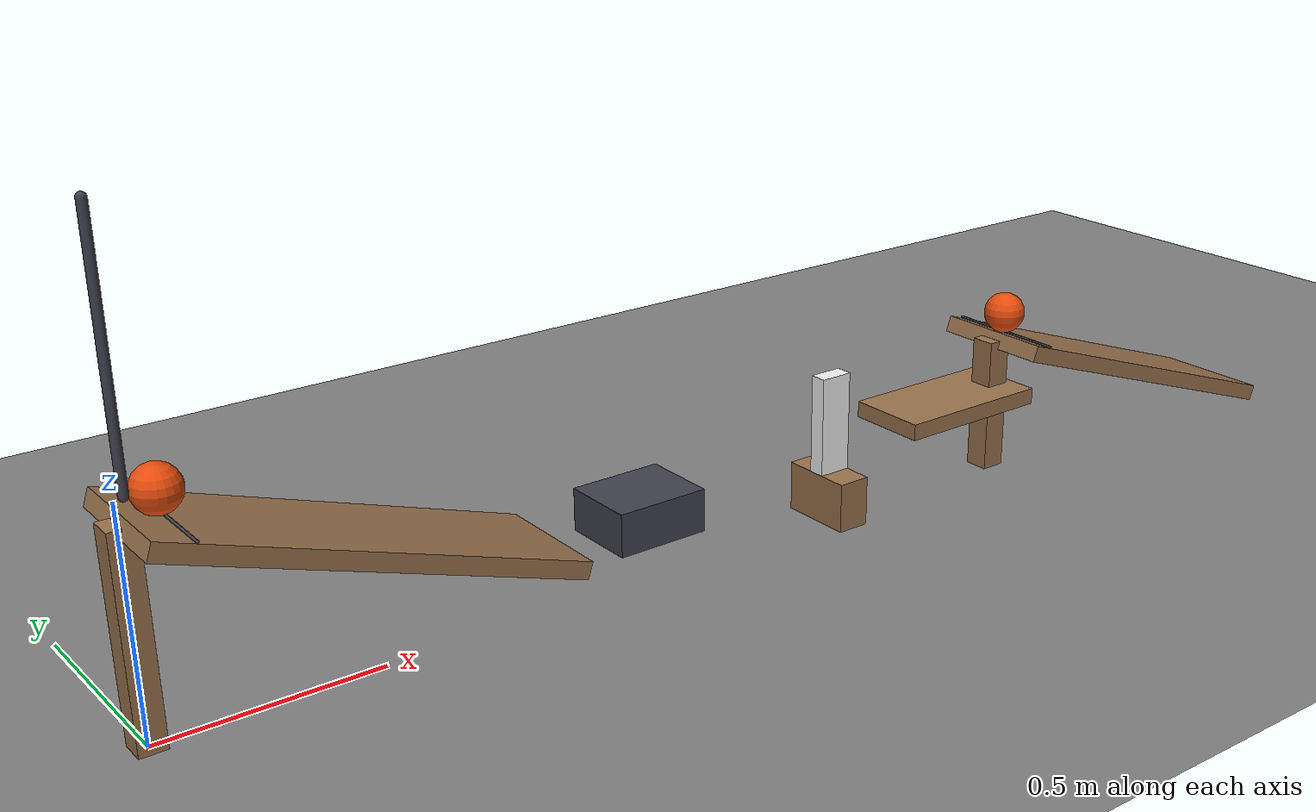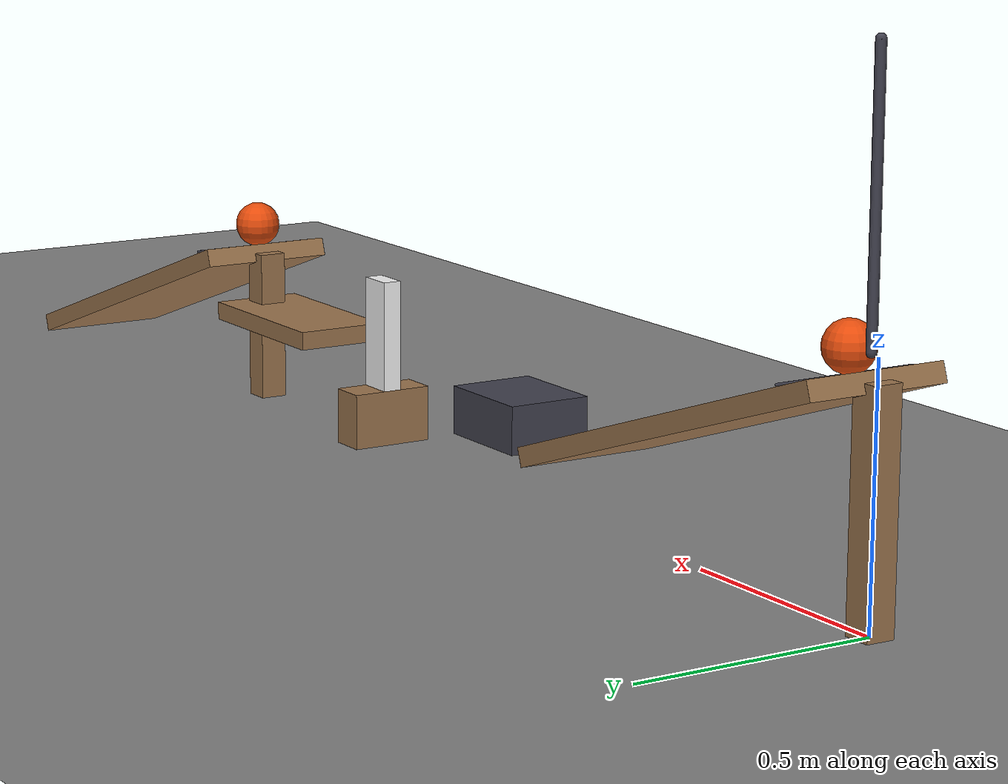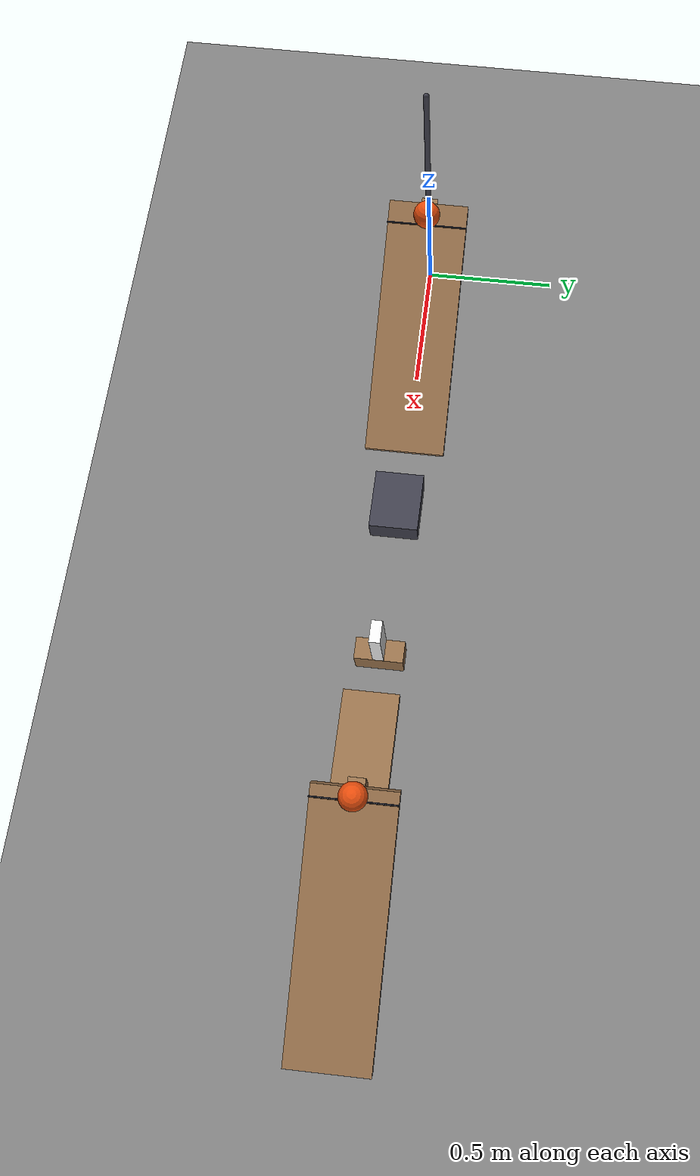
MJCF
<mujoco model="pendulum_ramp_cart_domino_flap_chain">
  <compiler angle="radian"/>
  <option timestep="0.002"/>
  <worldbody>
    <geom name="floor" type="plane" size="8 8 0.1" friction="0.68 0 0"/>
    <body name="ramp1">
      <geom name="ramp1_deck" type="box" pos="0.449121 0 0.304645" size="0.475 0.15 0.02" euler="0 0.331613 0" friction="0.68 0 0" solref="0.01 1" rgba="0.6 0.45 0.3 1"/>
      <geom name="ramp1_leg" type="box" pos="0 0 0.229645" size="0.03 0.03 0.229645" friction="0.68 0 0" solref="0.01 1" rgba="0.6 0.45 0.3 1"/>
    </body>
    <body name="ball1 keeper">
      <geom name="ball1 keeper" type="capsule" size="0.003" fromto="0.0873796 -0.15 0.453528 0.0873796 0.15 0.453528" friction="0.68 0 0" solref="0.01 1" rgba="0.25 0.25 0.3 1"/>
    </body>
    <body name="pendulum1" pos="0.0195209 0 1.04594">
      <joint name="pendulum_hinge" type="hinge" pos="0 0 0" axis="0 1 0" limited="true" range="-1.22173 0.959931" damping="0.04"/>
      <geom name="pendulum1" type="capsule" size="0.01" fromto="0 0 0 0 0 -0.54" mass="0.4" friction="0.68 0 0" solref="0.01 1" rgba="0.25 0.25 0.3 1"/>
    </body>
    <body name="ball1" pos="0.0795209 0 0.505942">
      <freejoint/>
      <geom name="ball1" type="sphere" pos="0 0 0" size="0.05" mass="0.2" condim="6" friction="0.68 0 0" solref="0.01 1" rgba="0.9 0.3 0.05 1"/>
    </body>
    <body name="cart1" pos="1.12824 1000 0.17">
      <joint name="cart_guide_approximation" type="hinge" pos="0 0 0" axis="0 0 1" limited="true" range="0 0.0004" damping="200000"/>
      <geom name="cart1" type="box" pos="0 -1000 0" size="0.11 0.09 0.05" mass="0.5" friction="0.68 0 0" solref="0.01 1" rgba="0.25 0.25 0.3 1"/>
    </body>
    <body name="domino support">
      <geom name="domino support" type="box" pos="1.67824 0 0.06" size="0.04 0.09 0.06" friction="0.68 0 0" solref="0.01 1" rgba="0.6 0.45 0.3 1"/>
    </body>
    <body name="domino1" pos="1.67824 0 0.24">
      <freejoint/>
      <geom name="domino1" type="box" pos="0 0 0" size="0.04 0.02 0.12" mass="0.25" friction="0.68 0 0" solref="0.01 1" rgba="0.95 0.95 0.95 1"/>
    </body>
    <body name="flap1" pos="1.85824 0 0.2">
      <joint name="flap_hinge" type="hinge" pos="0 0 0" axis="0 1 0" limited="true" range="-1.5708 -0.436332" damping="0.04"/>
      <geom name="flap1" type="box" pos="0.2 0 0" size="0.2 0.1 0.02" mass="0.3" friction="0.68 0 0" solref="0.01 1" rgba="0.6 0.45 0.3 1"/>
    </body>
    <body name="ramp2">
      <geom name="ramp2_deck" type="box" pos="2.65616 0 0.180355" size="0.475 0.15 0.02" euler="0 0.331613 0" friction="0.68 0 0" solref="0.01 1" rgba="0.6 0.45 0.3 1"/>
      <geom name="ramp2_leg" type="box" pos="2.20704 0 0.1675" size="0.03 0.03 0.1675" friction="0.68 0 0" solref="0.01 1" rgba="0.6 0.45 0.3 1"/>
    </body>
    <body name="ball2 keeper">
      <geom name="ball2 keeper" type="capsule" size="0.003" fromto="2.2566 -0.15 0.342261 2.2566 0.15 0.342261" friction="0.68 0 0" solref="0.01 1" rgba="0.25 0.25 0.3 1"/>
    </body>
    <body name="ball2" pos="2.24874 0 0.394675">
      <freejoint/>
      <geom name="ball2" type="sphere" pos="0 0 0" size="0.05" mass="0.2" condim="6" friction="0.68 0 0" solref="0.01 1" rgba="0.9 0.3 0.05 1"/>
    </body>
  </worldbody>
  <keyframe>
    <key name="start" qpos="0.959931 0.0795209 0 0.505942 1 0 0 0 0 1.67824 0 0.24 1 0 0 0 -1.5708 2.24874 0 0.394675 1 0 0 0" qvel="0 0 0 0 0 0 0 0 0 0 0 0 0 0 0 0 0 0 0 0 0"/>
  </keyframe>
</mujoco>
